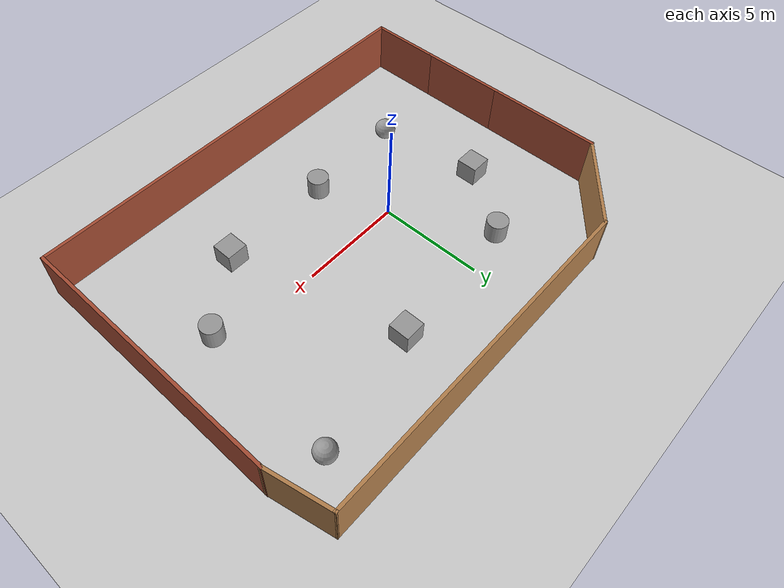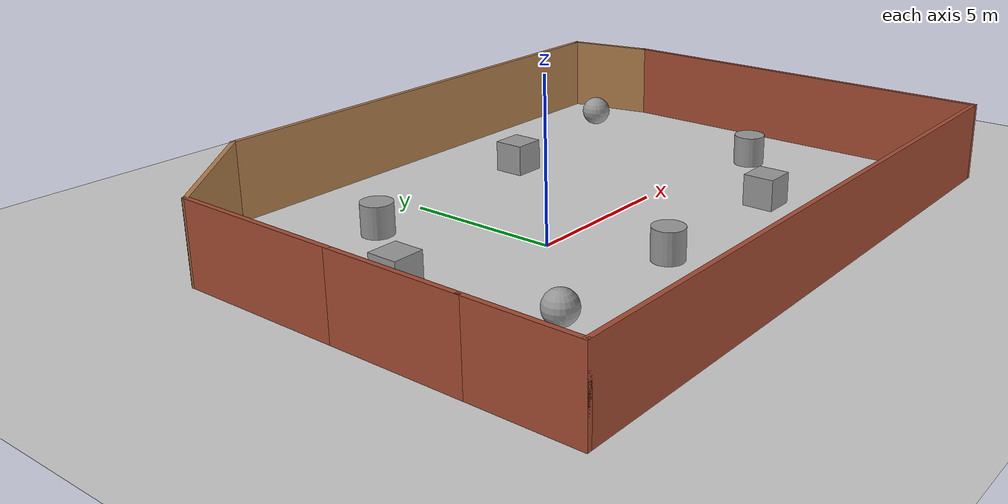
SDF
<sdf version="1.7">
 <world name="default">
  <light name="sun" type="directional">
   <pose>0 0 10 0 -0 0</pose>
   <diffuse>0.8 0.8 0.8 1</diffuse>
   <specular>0.2 0.2 0.2 1</specular>
   <attenuation>
    <range>1000</range>
    <constant>0.9</constant>
    <linear>0.01</linear>
    <quadratic>0.001</quadratic>
   </attenuation>
   <direction>-0.5 0.1 -0.9</direction>
   <spot><inner_angle>0</inner_angle><outer_angle>0</outer_angle><falloff>0</falloff></spot>
  </light>
  <model name="ground_plane">
   <static>1</static>
   <link name="link">
    <collision name="collision">
     <geometry><plane><normal>0 0 1</normal><size>100 100</size></plane></geometry>
     <surface>
      <contact><collide_bitmask>65535</collide_bitmask></contact>
      <friction><ode><mu>100</mu><mu2>50</mu2></ode></friction>
     </surface>
    </collision>
    <visual name="visual">
     <cast_shadows>0</cast_shadows>
     <geometry><plane><normal>0 0 1</normal><size>100 100</size></plane></geometry>
     <material>
      <script><uri>file://media/materials/scripts/gazebo.material</uri><name>Gazebo/Grey</name></script>
     </material>
    </visual>
   </link>
  </model>
  <gravity>0 0 -9.8</gravity>
  <magnetic_field>6e-06 2.3e-05 -4.2e-05</magnetic_field>
  <atmosphere type="adiabatic"/>
  <physics type="ode">
   <max_step_size>0.001</max_step_size>
   <real_time_factor>1</real_time_factor>
   <real_time_update_rate>1000</real_time_update_rate>
  </physics>
  <scene><ambient>0.4 0.4 0.4 1</ambient><background>0.7 0.7 0.7 1</background><shadows>1</shadows></scene>
  <spherical_coordinates>
   <surface_model>EARTH_WGS84</surface_model>
   <latitude_deg>0</latitude_deg>
   <longitude_deg>0</longitude_deg>
   <elevation>0</elevation>
   <heading_deg>0</heading_deg>
  </spherical_coordinates>
  <model name="world_1">
   <pose>2.5617 0.5635 0 0 -0 0</pose>
   <link name="Wall_12">
    <collision name="Wall_12_Collision">
     <geometry><box><size>5.5 0.15 2.5</size></box></geometry>
     <pose>0 0 1.25 0 -0 0</pose>
    </collision>
    <visual name="Wall_12_Visual">
     <pose>0 0 1.25 0 -0 0</pose>
     <geometry><box><size>5.5 0.15 2.5</size></box></geometry>
     <material>
      <script><uri>file://media/materials/scripts/gazebo.material</uri><name>Gazebo/Bricks</name></script>
      <ambient>1 1 1 1</ambient>
     </material>
     <meta><layer>0</layer></meta>
    </visual>
    <pose>-10.2917 2.2515 0 0 -0 1.5708</pose>
   </link>
   <link name="Wall_15">
    <collision name="Wall_15_Collision">
     <geometry><box><size>3.0791 0.15 2.5</size></box></geometry>
     <pose>0 0 1.25 0 -0 0</pose>
    </collision>
    <visual name="Wall_15_Visual">
     <pose>0 0 1.25 0 -0 0</pose>
     <geometry><box><size>3.0791 0.15 2.5</size></box></geometry>
     <material>
      <script><uri>file://media/materials/scripts/gazebo.material</uri><name>Gazebo/Wood</name></script>
      <ambient>1 1 1 1</ambient>
     </material>
     <meta><layer>0</layer></meta>
    </visual>
    <pose>10.0074 6.40979 0 0 -0 -1.36383</pose>
   </link>
   <link name="Wall_17">
    <collision name="Wall_17_Collision">
     <geometry><box><size>16.5 0.15 2.5</size></box></geometry>
     <pose>0 0 1.25 0 -0 0</pose>
    </collision>
    <visual name="Wall_17_Visual">
     <pose>0 0 1.25 0 -0 0</pose>
     <geometry><box><size>16.5 0.15 2.5</size></box></geometry>
     <material>
      <script><uri>file://media/materials/scripts/gazebo.material</uri><name>Gazebo/Wood</name></script>
      <ambient>1 1 1 1</ambient>
     </material>
     <meta><layer>0</layer></meta>
    </visual>
    <pose>1.53141 7.84309 0 0 -0 3.14159</pose>
   </link>
   <link name="Wall_18">
    <collision name="Wall_18_Collision">
     <geometry><box><size>4.82067 0.15 2.5</size></box></geometry>
     <pose>0 0 1.25 0 -0 0</pose>
    </collision>
    <visual name="Wall_18_Visual">
     <pose>0 0 1.25 0 -0 0</pose>
     <geometry><box><size>4.82067 0.15 2.5</size></box></geometry>
     <material>
      <script><uri>file://media/materials/scripts/gazebo.material</uri><name>Gazebo/Wood</name></script>
      <ambient>1 1 1 1</ambient>
     </material>
     <meta><layer>0</layer></meta>
    </visual>
    <pose>-8.46765 6.38479 0 0 -0 -2.46717</pose>
   </link>
   <link name="Wall_2">
    <collision name="Wall_2_Collision">
     <geometry><box><size>4.25 0.15 2.5</size></box></geometry>
     <pose>0 0 1.25 0 -0 0</pose>
    </collision>
    <visual name="Wall_2_Visual">
     <pose>0 0 1.25 0 -0 0</pose>
     <geometry><box><size>4.25 0.15 2.5</size></box></geometry>
     <material>
      <script><uri>file://media/materials/scripts/gazebo.material</uri><name>Gazebo/Bricks</name></script>
      <ambient>1 1 1 1</ambient>
     </material>
     <meta><layer>0</layer></meta>
    </visual>
    <pose>-10.2917 -2.4735 0 0 -0 -1.5708</pose>
   </link>
   <link name="Wall_3">
    <collision name="Wall_3_Collision">
     <geometry><box><size>3.5 0.15 2.5</size></box></geometry>
     <pose>0 0 1.25 0 -0 0</pose>
    </collision>
    <visual name="Wall_3_Visual">
     <pose>0 0 1.25 0 -0 0</pose>
     <geometry><box><size>3.5 0.15 2.5</size></box></geometry>
     <material>
      <script><uri>file://media/materials/scripts/gazebo.material</uri><name>Gazebo/Bricks</name></script>
      <ambient>1 1 1 1</ambient>
     </material>
     <meta><layer>0</layer></meta>
    </visual>
    <pose>-10.2917 -6.1985 0 0 -0 -1.5708</pose>
   </link>
   <link name="Wall_8">
    <collision name="Wall_8_Collision">
     <geometry><box><size>20.75 0.15 2.5</size></box></geometry>
     <pose>0 0 1.25 0 -0 0</pose>
    </collision>
    <visual name="Wall_8_Visual">
     <pose>0 0 1.25 0 -0 0</pose>
     <geometry><box><size>20.75 0.15 2.5</size></box></geometry>
     <material>
      <script><uri>file://media/materials/scripts/gazebo.material</uri><name>Gazebo/Bricks</name></script>
      <ambient>1 1 1 1</ambient>
     </material>
     <meta><layer>0</layer></meta>
    </visual>
    <pose>0.008301 -7.8735 0 0 -0 0</pose>
   </link>
   <link name="Wall_9">
    <collision name="Wall_9_Collision">
     <geometry><box><size>13 0.15 2.5</size></box></geometry>
     <pose>0 0 1.25 0 -0 0</pose>
    </collision>
    <visual name="Wall_9_Visual">
     <pose>0 0 1.25 0 -0 0</pose>
     <geometry><box><size>13 0.15 2.5</size></box></geometry>
     <material>
      <script><uri>file://media/materials/scripts/gazebo.material</uri><name>Gazebo/Bricks</name></script>
      <ambient>1 1 1 1</ambient>
     </material>
     <meta><layer>0</layer></meta>
    </visual>
    <pose>10.3083 -1.4485 0 0 -0 1.5708</pose>
   </link>
   <static>1</static>
  </model>
  <model name="unit_cylinder">
   <pose>-2.26693 4.45358 0.499998 3e-06 -4e-06 0</pose>
   <link name="link">
    <inertial>
     <mass>1</mass>
     <inertia><ixx>0.145833</ixx><ixy>0</ixy><ixz>0</ixz><iyy>0.145833</iyy><iyz>0</iyz><izz>0.125</izz></inertia>
    </inertial>
    <collision name="collision">
     <geometry><cylinder><radius>0.5</radius><length>1</length></cylinder></geometry>
    </collision>
    <visual name="visual">
     <geometry><cylinder><radius>0.5</radius><length>1</length></cylinder></geometry>
     <material>
      <script><name>Gazebo/Grey</name><uri>file://media/materials/scripts/gazebo.material</uri></script>
     </material>
    </visual>
   </link>
  </model>
  <model name="unit_sphere">
   <pose>-3.70979 -3.44941 0.5 0 -0 0</pose>
   <link name="link">
    <inertial>
     <mass>1</mass>
     <inertia><ixx>0.1</ixx><ixy>0</ixy><ixz>0</ixz><iyy>0.1</iyy><iyz>0</iyz><izz>0.1</izz></inertia>
    </inertial>
    <collision name="collision"><geometry><sphere><radius>0.5</radius></sphere></geometry></collision>
    <visual name="visual">
     <geometry><sphere><radius>0.5</radius></sphere></geometry>
     <material>
      <script><name>Gazebo/Grey</name><uri>file://media/materials/scripts/gazebo.material</uri></script>
     </material>
    </visual>
   </link>
  </model>
  <model name="unit_box">
   <pose>6.71726 -3.24254 0.499995 -1e-05 -0 -0</pose>
   <link name="link">
    <inertial>
     <mass>1</mass>
     <inertia>
      <ixx>0.166667</ixx>
      <ixy>0</ixy>
      <ixz>0</ixz>
      <iyy>0.166667</iyy>
      <iyz>0</iyz>
      <izz>0.166667</izz>
     </inertia>
    </inertial>
    <collision name="collision"><geometry><box><size>1 1 1</size></box></geometry></collision>
    <visual name="visual">
     <geometry><box><size>1 1 1</size></box></geometry>
     <material>
      <script><name>Gazebo/Grey</name><uri>file://media/materials/scripts/gazebo.material</uri></script>
     </material>
    </visual>
   </link>
  </model>
  <model name="unit_box_0">
   <pose>4.61611 4.97657 0.499995 0 1e-05 0</pose>
   <link name="link">
    <inertial>
     <mass>1</mass>
     <inertia>
      <ixx>0.166667</ixx>
      <ixy>0</ixy>
      <ixz>0</ixz>
      <iyy>0.166667</iyy>
      <iyz>0</iyz>
      <izz>0.166667</izz>
     </inertia>
    </inertial>
    <collision name="collision"><geometry><box><size>1 1 1</size></box></geometry></collision>
    <visual name="visual">
     <geometry><box><size>1 1 1</size></box></geometry>
     <material>
      <script><name>Gazebo/Grey</name><uri>file://media/materials/scripts/gazebo.material</uri></script>
     </material>
    </visual>
   </link>
  </model>
  <model name="unit_cylinder_0">
   <pose>9.89293 -0.825012 0.499993 -3e-06 -3e-06 0</pose>
   <link name="link">
    <inertial>
     <mass>1</mass>
     <inertia><ixx>0.145833</ixx><ixy>0</ixy><ixz>0</ixz><iyy>0.145833</iyy><iyz>0</iyz><izz>0.125</izz></inertia>
    </inertial>
    <collision name="collision">
     <geometry><cylinder><radius>0.5</radius><length>1</length></cylinder></geometry>
    </collision>
    <visual name="visual">
     <geometry><cylinder><radius>0.5</radius><length>1</length></cylinder></geometry>
     <material>
      <script><name>Gazebo/Grey</name><uri>file://media/materials/scripts/gazebo.material</uri></script>
     </material>
    </visual>
   </link>
  </model>
  <model name="unit_cylinder_1">
   <pose>1.24513 -3.28237 0.499997 3e-06 4e-06 -0</pose>
   <link name="link">
    <inertial>
     <mass>1</mass>
     <inertia><ixx>0.145833</ixx><ixy>0</ixy><ixz>0</ixz><iyy>0.145833</iyy><iyz>0</iyz><izz>0.125</izz></inertia>
    </inertial>
    <collision name="collision">
     <geometry><cylinder><radius>0.5</radius><length>1</length></cylinder></geometry>
    </collision>
    <visual name="visual">
     <geometry><cylinder><radius>0.5</radius><length>1</length></cylinder></geometry>
     <material>
      <script><name>Gazebo/Grey</name><uri>file://media/materials/scripts/gazebo.material</uri></script>
     </material>
    </visual>
   </link>
  </model>
  <model name="unit_box_1">
   <pose>-4.50993 1.37196 0.499995 -1e-05 -0 0</pose>
   <link name="link">
    <inertial>
     <mass>1</mass>
     <inertia>
      <ixx>0.166667</ixx>
      <ixy>0</ixy>
      <ixz>0</ixz>
      <iyy>0.166667</iyy>
      <iyz>0</iyz>
      <izz>0.166667</izz>
     </inertia>
    </inertial>
    <collision name="collision"><geometry><box><size>1 1 1</size></box></geometry></collision>
    <visual name="visual">
     <geometry><box><size>1 1 1</size></box></geometry>
     <material>
      <script><name>Gazebo/Grey</name><uri>file://media/materials/scripts/gazebo.material</uri></script>
     </material>
    </visual>
   </link>
  </model>
  <model name="unit_sphere_0">
   <pose>10.4669 6.10173 0.5 0 -0 0</pose>
   <link name="link">
    <inertial>
     <mass>1</mass>
     <inertia><ixx>0.1</ixx><ixy>0</ixy><ixz>0</ixz><iyy>0.1</iyy><iyz>0</iyz><izz>0.1</izz></inertia>
    </inertial>
    <collision name="collision"><geometry><sphere><radius>0.5</radius></sphere></geometry></collision>
    <visual name="visual">
     <geometry><sphere><radius>0.5</radius></sphere></geometry>
     <material>
      <script><name>Gazebo/Grey</name><uri>file://media/materials/scripts/gazebo.material</uri></script>
     </material>
    </visual>
   </link>
  </model>
 </world>
</sdf>
